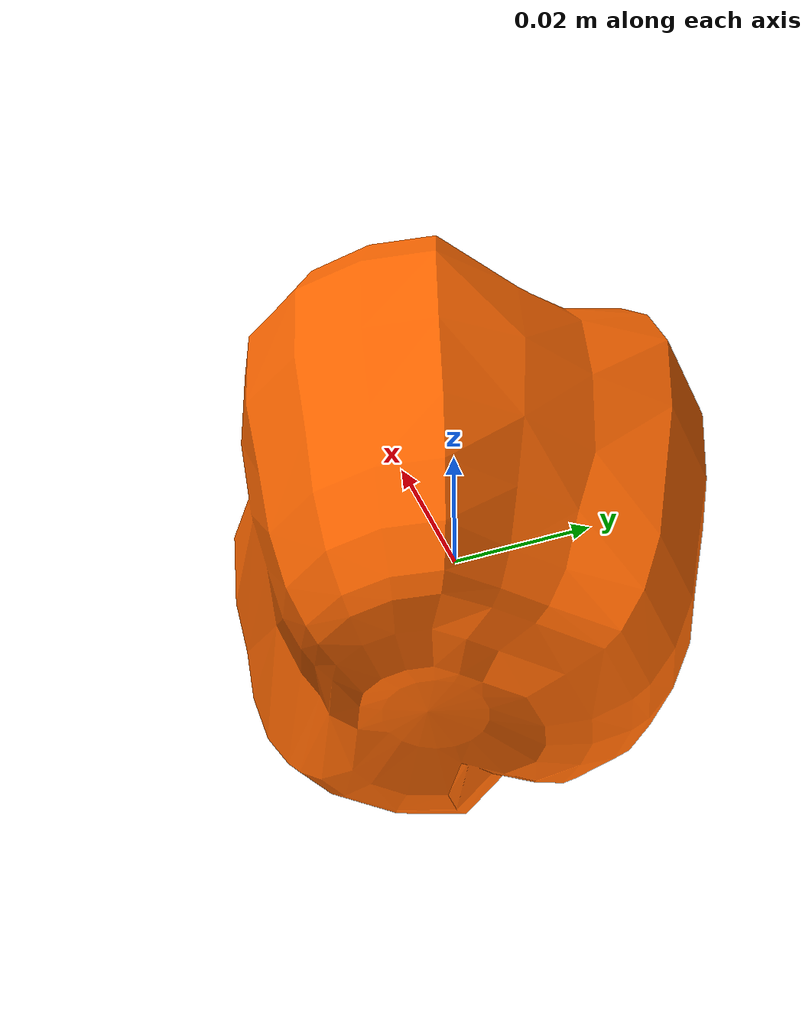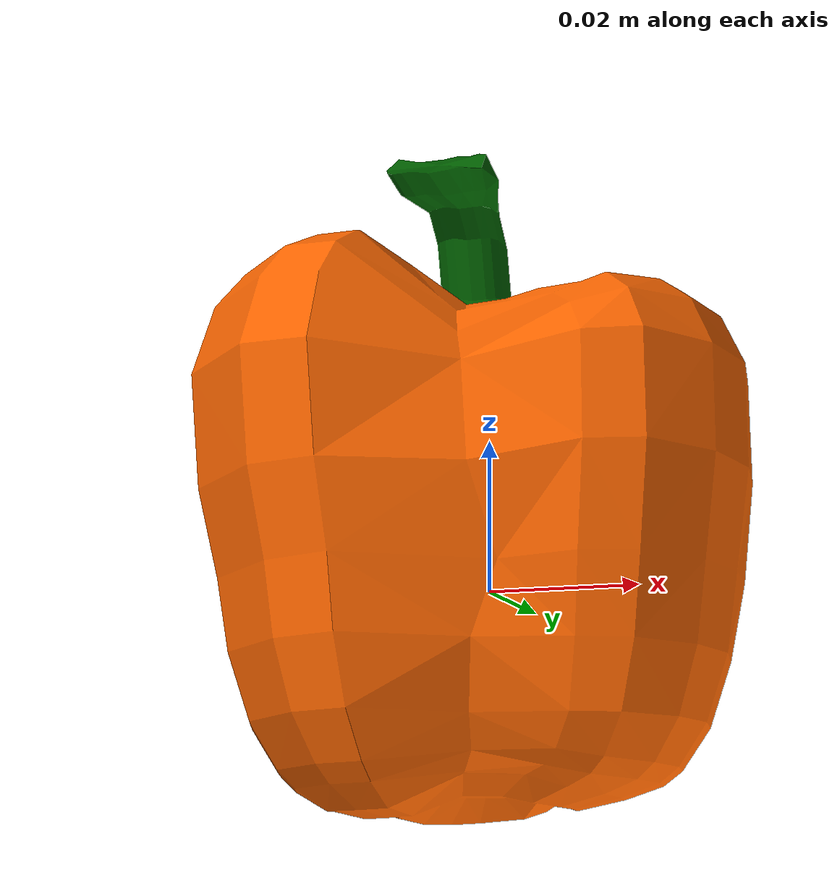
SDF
<?xml version="1.0"?>
<sdf version="1.6">
  <model name="bell_pepper_yellow">
    <static>true</static>
    <link name="link">
      <collision name="collision">
          <geometry>
            <box><size>0.06 0.06 0.07</size></box>
          </geometry>
      </collision>
      <visual name="visual1">
        <cast_shadows>false</cast_shadows>
        <geometry>
          <mesh><uri>model://bell_pepper_yellow/meshes/bell_pepper_yellow.dae</uri></mesh>
        </geometry>
      </visual>
    </link>
  </model>
</sdf>
